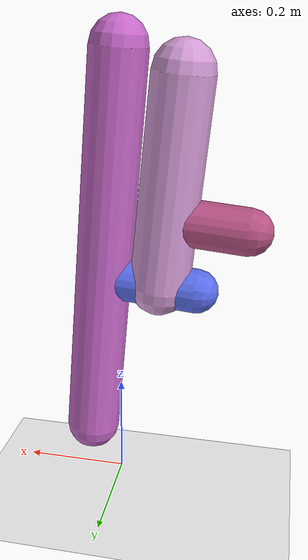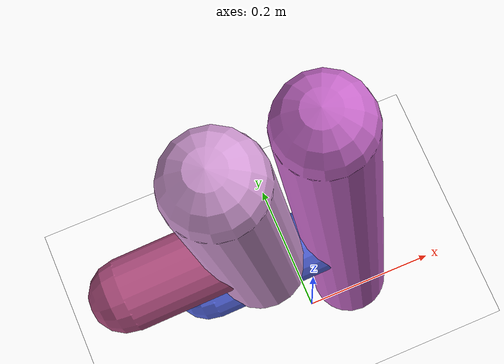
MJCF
<mujoco model="morphology">
  <option timestep="0.01"/>
  <default>
    <default class="/"/>
  </default>
  <asset>
    <texture name="texplane" type="2d" builtin="checker" rgb1="0.1 0.2 0.3" rgb2="0.2 0.3 0.4" width="300" height="300"/>
    <material name="MatPlane" class="/" texture="texplane" texrepeat="20 20" specular="1" shininess="1" reflectance="0.5"/>
  </asset>
  <worldbody>
    <light name="//unnamed_light_0" class="/" directional="true" pos="0 0 1.5" dir="0 0 -1.3" cutoff="1e+02" exponent="1" diffuse="1 1 1" specular="0.1 0.1 0.1"/>
    <geom name="ground" class="/" type="plane" size="15 15 0.5" material="MatPlane" rgba="1 1 1 1"/>
    <body name="body" pos="0 0 0.85">
      <geom name="geom0" class="/" type="capsule" contype="1" conaffinity="1" condim="3" size="0.053" rgba="0.78 0.41 0.79 1" friction="0.4 0.1 0.1" fromto="0 0 0 0.06 0 -0.75"/>
      <body name="body1" pos="0.034 0 -0.42">
        <geom name="geom1" class="/" type="capsule" contype="1" conaffinity="1" condim="3" size="0.042" rgba="0.35 0.43 0.93 1" friction="0.4 0.1 0.1" fromto="0 0 0 -0.18 0 -0.017"/>
        <body name="body2" pos="-0.11 0 -0.011">
          <geom name="geom2" class="/" type="capsule" contype="1" conaffinity="1" condim="3" size="0.057" rgba="0.83 0.61 0.84 1" friction="0.4 0.1 0.1" fromto="0 0 0 -0.036 0 0.39"/>
          <body name="body3" pos="-0.012 0 0.13">
            <geom name="geom3" class="/" type="capsule" contype="1" conaffinity="1" condim="3" size="0.044" rgba="0.72 0.32 0.52 1" friction="0.4 0.1 0.1" fromto="0 0 0 -0.15 0 -0.014"/>
            <joint name="joint3" class="/" type="hinge" axis="0 1 0" limited="true" stiffness="20" range="-46 46" armature="0.1" damping="2"/>
          </body>
          <joint name="joint2" class="/" type="hinge" axis="0 1 0" limited="true" stiffness="20" range="-34 34" armature="0.1" damping="2"/>
        </body>
        <joint name="joint1" class="/" type="hinge" axis="0 1 0" limited="true" stiffness="20" range="-66 66" armature="0.1" damping="2"/>
      </body>
      <joint name="rootx" class="/" type="slide" axis="1 0 0" limited="false" stiffness="0" armature="0" damping="0"/>
      <joint name="rootz" class="/" type="slide" axis="0 0 1" limited="false" stiffness="0" armature="0" damping="0"/>
      <joint name="rooty" class="/" type="hinge" axis="0 1 0" limited="false" stiffness="0" armature="0" damping="0"/>
    </body>
  </worldbody>
  <actuator>
    <motor name="motor3" class="/" ctrllimited="true" ctrlrange="-1 1" gear="1.7e+02" joint="joint3"/>
    <motor name="motor2" class="/" ctrllimited="true" ctrlrange="-1 1" gear="1.4e+02" joint="joint2"/>
    <motor name="motor1" class="/" ctrllimited="true" ctrlrange="-1 1" gear="1.8e+02" joint="joint1"/>
  </actuator>
  <sensor>
    <subtreelinvel name="velocity" body="body"/>
  </sensor>
</mujoco>
